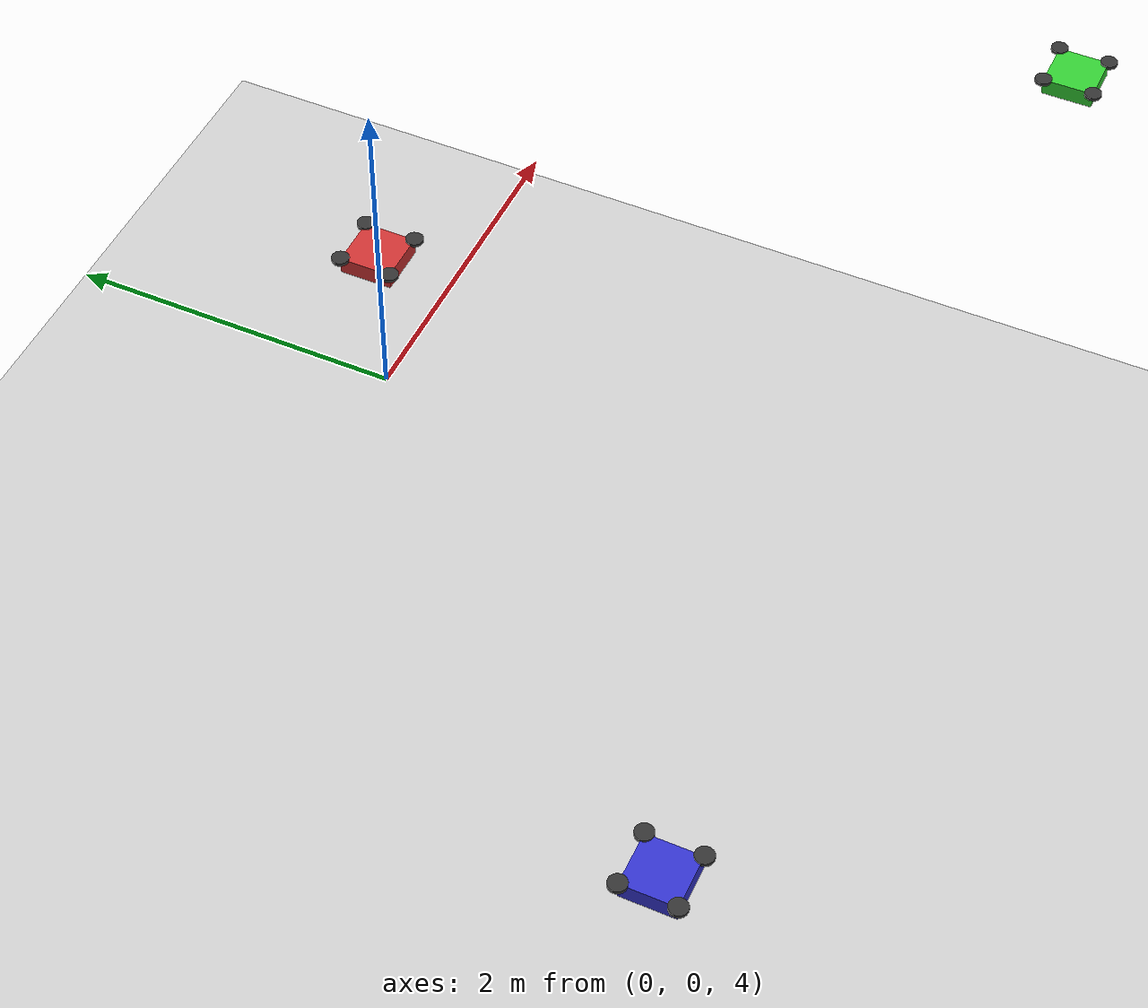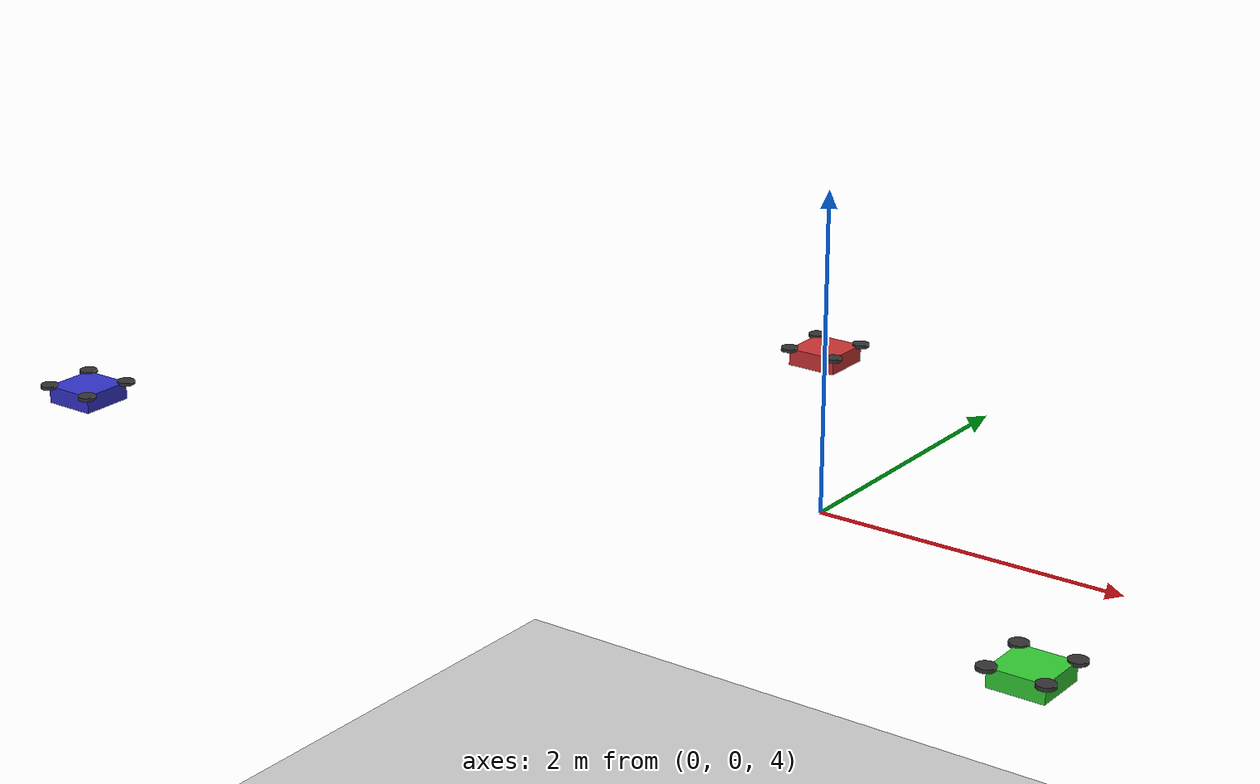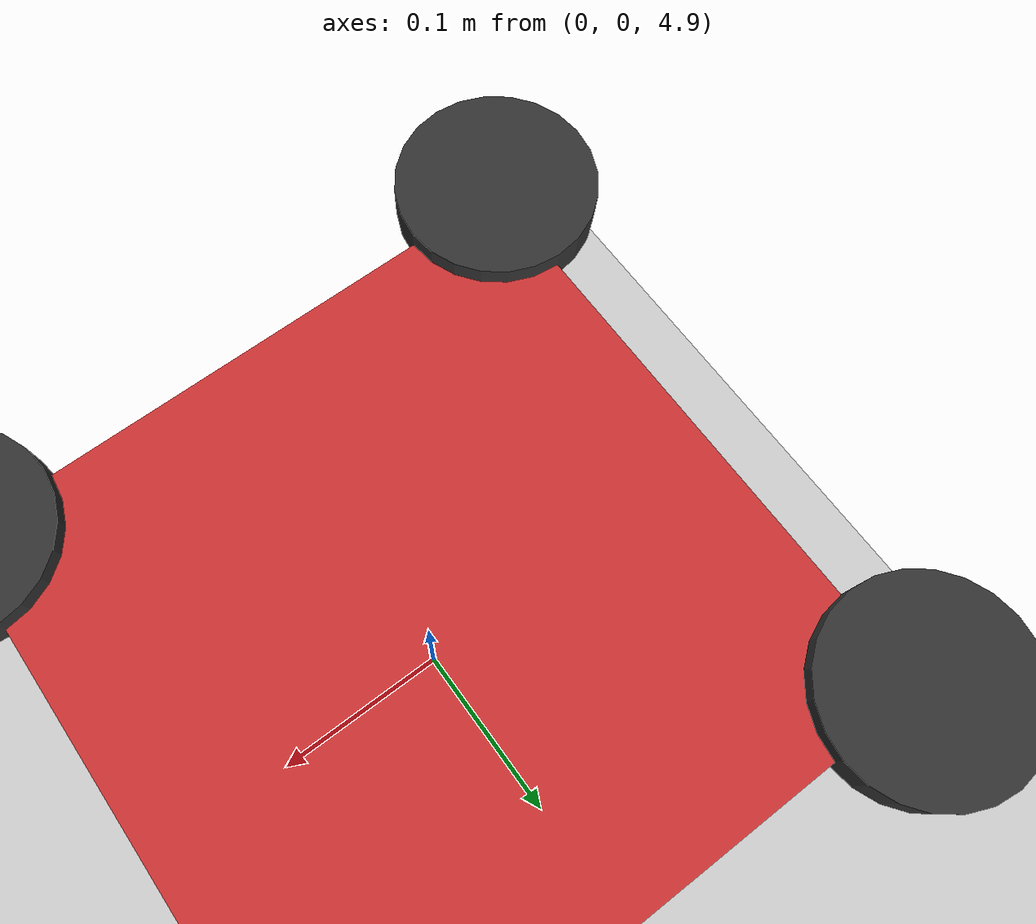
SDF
<?xml version="1.0" ?>
<sdf version="1.6">
  <world name="formation_flying_world">
    <!-- A global light source -->
    <include>
      <uri>model://sun</uri>
    </include>

    <!-- A ground plane -->
    <include>
      <uri>model://ground_plane</uri>
    </include>

    <!-- Drone 1 - Leader -->
    <model name="drone1">
      <static>false</static>
      <link name="base_link">
        <visual name="body_visual">
          <geometry>
            <box>
              <size>0.3 0.3 0.1</size>
            </box>
          </geometry>
          <material>
            <ambient>0.8 0.2 0.2 1</ambient>
            <diffuse>0.8 0.2 0.2 1</diffuse>
            <specular>0.2 0.2 0.2 1</specular>
          </material>
        </visual>

        <collision name="body_collision">
          <geometry>
            <box>
              <size>0.3 0.3 0.1</size>
            </box>
          </geometry>
        </collision>

        <inertial>
          <mass>1.0</mass>
          <inertia>
            <ixx>0.01</ixx>
            <ixy>0</ixy>
            <ixz>0</ixz>
            <iyy>0.01</iyy>
            <iyz>0</iyz>
            <izz>0.02</izz>
          </inertia>
        </inertial>
      </link>

      <!-- Propellers -->
      <link name="propeller_1">
        <visual name="prop_1_visual">
          <geometry>
            <cylinder>
              <radius>0.05</radius>
              <length>0.02</length>
            </cylinder>
          </geometry>
          <material>
            <ambient>0.2 0.2 0.2 1</ambient>
            <diffuse>0.2 0.2 0.2 1</diffuse>
          </material>
        </visual>
        <pose>0.15 0.15 0.05 0 0 0</pose>
      </link>

      <link name="propeller_2">
        <visual name="prop_2_visual">
          <geometry>
            <cylinder>
              <radius>0.05</radius>
              <length>0.02</length>
            </cylinder>
          </geometry>
          <material>
            <ambient>0.2 0.2 0.2 1</ambient>
            <diffuse>0.2 0.2 0.2 1</diffuse>
          </material>
        </visual>
        <pose>-0.15 0.15 0.05 0 0 0</pose>
      </link>

      <link name="propeller_3">
        <visual name="prop_3_visual">
          <geometry>
            <cylinder>
              <radius>0.05</radius>
              <length>0.02</length>
            </cylinder>
          </geometry>
          <material>
            <ambient>0.2 0.2 0.2 1</ambient>
            <diffuse>0.2 0.2 0.2 1</diffuse>
          </material>
        </visual>
        <pose>0.15 -0.15 0.05 0 0 0</pose>
      </link>

      <link name="propeller_4">
        <visual name="prop_4_visual">
          <geometry>
            <cylinder>
              <radius>0.05</radius>
              <length>0.02</length>
            </cylinder>
          </geometry>
          <material>
            <ambient>0.2 0.2 0.2 1</ambient>
            <diffuse>0.2 0.2 0.2 1</diffuse>
          </material>
        </visual>
        <pose>-0.15 -0.15 0.05 0 0 0</pose>
      </link>

      <!-- Joints -->
      <joint name="prop_1_joint" type="fixed">
        <parent>base_link</parent>
        <child>propeller_1</child>
      </joint>

      <joint name="prop_2_joint" type="fixed">
        <parent>base_link</parent>
        <child>propeller_2</child>
      </joint>

      <joint name="prop_3_joint" type="fixed">
        <parent>base_link</parent>
        <child>propeller_3</child>
      </joint>

      <joint name="prop_4_joint" type="fixed">
        <parent>base_link</parent>
        <child>propeller_4</child>
      </joint>

      <!-- Plugin for drone control -->
      <plugin name="drone_controller" filename="libgazebo_ros_planar_move.so">
        <commandTopic>/drone1/cmd_vel</commandTopic>
        <odometryTopic>/drone1/odom</odometryTopic>
        <odometryFrame>odom</odometryFrame>
        <odometryRate>20.0</odometryRate>
        <robotBaseFrame>base_link</robotBaseFrame>
      </plugin>

      <!-- Initial position -->
      <pose>0 0 5 0 0 0</pose>
    </model>

    <!-- Drone 2 - Left Wing -->
    <model name="drone2">
      <static>false</static>
      <link name="base_link">
        <visual name="body_visual">
          <geometry>
            <box>
              <size>0.3 0.3 0.1</size>
            </box>
          </geometry>
          <material>
            <ambient>0.2 0.2 0.8 1</ambient>
            <diffuse>0.2 0.2 0.8 1</diffuse>
            <specular>0.2 0.2 0.2 1</specular>
          </material>
        </visual>

        <collision name="body_collision">
          <geometry>
            <box>
              <size>0.3 0.3 0.1</size>
            </box>
          </geometry>
        </collision>

        <inertial>
          <mass>1.0</mass>
          <inertia>
            <ixx>0.01</ixx>
            <ixy>0</ixy>
            <ixz>0</ixz>
            <iyy>0.01</iyy>
            <iyz>0</iyz>
            <izz>0.02</izz>
          </inertia>
        </inertial>
      </link>

      <!-- Propellers -->
      <link name="propeller_1">
        <visual name="prop_1_visual">
          <geometry>
            <cylinder>
              <radius>0.05</radius>
              <length>0.02</length>
            </cylinder>
          </geometry>
          <material>
            <ambient>0.2 0.2 0.2 1</ambient>
            <diffuse>0.2 0.2 0.2 1</diffuse>
          </material>
        </visual>
        <pose>0.15 0.15 0.05 0 0 0</pose>
      </link>

      <link name="propeller_2">
        <visual name="prop_2_visual">
          <geometry>
            <cylinder>
              <radius>0.05</radius>
              <length>0.02</length>
            </cylinder>
          </geometry>
          <material>
            <ambient>0.2 0.2 0.2 1</ambient>
            <diffuse>0.2 0.2 0.2 1</diffuse>
          </material>
        </visual>
        <pose>-0.15 0.15 0.05 0 0 0</pose>
      </link>

      <link name="propeller_3">
        <visual name="prop_3_visual">
          <geometry>
            <cylinder>
              <radius>0.05</radius>
              <length>0.02</length>
            </cylinder>
          </geometry>
          <material>
            <ambient>0.2 0.2 0.2 1</ambient>
            <diffuse>0.2 0.2 0.2 1</diffuse>
          </material>
        </visual>
        <pose>0.15 -0.15 0.05 0 0 0</pose>
      </link>

      <link name="propeller_4">
        <visual name="prop_4_visual">
          <geometry>
            <cylinder>
              <radius>0.05</radius>
              <length>0.02</length>
            </cylinder>
          </geometry>
          <material>
            <ambient>0.2 0.2 0.2 1</ambient>
            <diffuse>0.2 0.2 0.2 1</diffuse>
          </material>
        </visual>
        <pose>-0.15 -0.15 0.05 0 0 0</pose>
      </link>

      <!-- Joints -->
      <joint name="prop_1_joint" type="fixed">
        <parent>base_link</parent>
        <child>propeller_1</child>
      </joint>

      <joint name="prop_2_joint" type="fixed">
        <parent>base_link</parent>
        <child>propeller_2</child>
      </joint>

      <joint name="prop_3_joint" type="fixed">
        <parent>base_link</parent>
        <child>propeller_3</child>
      </joint>

      <joint name="prop_4_joint" type="fixed">
        <parent>base_link</parent>
        <child>propeller_4</child>
      </joint>

      <!-- Plugin for drone control -->
      <plugin name="drone_controller" filename="libgazebo_ros_planar_move.so">
        <commandTopic>/drone2/cmd_vel</commandTopic>
        <odometryTopic>/drone2/odom</odometryTopic>
        <odometryFrame>odom</odometryFrame>
        <odometryRate>20.0</odometryRate>
        <robotBaseFrame>base_link</robotBaseFrame>
      </plugin>

      <!-- Initial position -->
      <pose>-3 -3 5 0 0 0</pose>
    </model>

    <!-- Drone 3 - Right Wing -->
    <model name="drone3">
      <static>false</static>
      <link name="base_link">
        <visual name="body_visual">
          <geometry>
            <box>
              <size>0.3 0.3 0.1</size>
            </box>
          </geometry>
          <material>
            <ambient>0.2 0.8 0.2 1</ambient>
            <diffuse>0.2 0.8 0.2 1</diffuse>
            <specular>0.2 0.2 0.2 1</specular>
          </material>
        </visual>

        <collision name="body_collision">
          <geometry>
            <box>
              <size>0.3 0.3 0.1</size>
            </box>
          </geometry>
        </collision>

        <inertial>
          <mass>1.0</mass>
          <inertia>
            <ixx>0.01</ixx>
            <ixy>0</ixy>
            <ixz>0</ixz>
            <iyy>0.01</iyy>
            <iyz>0</iyz>
            <izz>0.02</izz>
          </inertia>
        </inertial>
      </link>

      <!-- Propellers -->
      <link name="propeller_1">
        <visual name="prop_1_visual">
          <geometry>
            <cylinder>
              <radius>0.05</radius>
              <length>0.02</length>
            </cylinder>
          </geometry>
          <material>
            <ambient>0.2 0.2 0.2 1</ambient>
            <diffuse>0.2 0.2 0.2 1</diffuse>
          </material>
        </visual>
        <pose>0.15 0.15 0.05 0 0 0</pose>
      </link>

      <link name="propeller_2">
        <visual name="prop_2_visual">
          <geometry>
            <cylinder>
              <radius>0.05</radius>
              <length>0.02</length>
            </cylinder>
          </geometry>
          <material>
            <ambient>0.2 0.2 0.2 1</ambient>
            <diffuse>0.2 0.2 0.2 1</diffuse>
          </material>
        </visual>
        <pose>-0.15 0.15 0.05 0 0 0</pose>
      </link>

      <link name="propeller_3">
        <visual name="prop_3_visual">
          <geometry>
            <cylinder>
              <radius>0.05</radius>
              <length>0.02</length>
            </cylinder>
          </geometry>
          <material>
            <ambient>0.2 0.2 0.2 1</ambient>
            <diffuse>0.2 0.2 0.2 1</diffuse>
          </material>
        </visual>
        <pose>0.15 -0.15 0.05 0 0 0</pose>
      </link>

      <link name="propeller_4">
        <visual name="prop_4_visual">
          <geometry>
            <cylinder>
              <radius>0.05</radius>
              <length>0.02</length>
            </cylinder>
          </geometry>
          <material>
            <ambient>0.2 0.2 0.2 1</ambient>
            <diffuse>0.2 0.2 0.2 1</diffuse>
          </material>
        </visual>
        <pose>-0.15 -0.15 0.05 0 0 0</pose>
      </link>

      <!-- Joints -->
      <joint name="prop_1_joint" type="fixed">
        <parent>base_link</parent>
        <child>propeller_1</child>
      </joint>

      <joint name="prop_2_joint" type="fixed">
        <parent>base_link</parent>
        <child>propeller_2</child>
      </joint>

      <joint name="prop_3_joint" type="fixed">
        <parent>base_link</parent>
        <child>propeller_3</child>
      </joint>

      <joint name="prop_4_joint" type="fixed">
        <parent>base_link</parent>
        <child>propeller_4</child>
      </joint>

      <!-- Plugin for drone control -->
      <plugin name="drone_controller" filename="libgazebo_ros_planar_move.so">
        <commandTopic>/drone3/cmd_vel</commandTopic>
        <odometryTopic>/drone3/odom</odometryTopic>
        <odometryFrame>odom</odometryFrame>
        <odometryRate>20.0</odometryRate>
        <robotBaseFrame>base_link</robotBaseFrame>
      </plugin>

      <!-- Initial position -->
      <pose>3 -3 5 0 0 0</pose>
    </model>

    <!-- Physics settings -->
    <physics type="ode">
      <max_step_size>0.001</max_step_size>
      <real_time_factor>1</real_time_factor>
      <real_time_update_rate>1000</real_time_update_rate>
      <gravity>0 0 -9.81</gravity>
    </physics>

    <!-- GUI settings -->
    <gui fullscreen='0'>
      <camera name='user_camera'>
        <pose>5 -5 5 0 0.785 0.785</pose>
        <view_controller>orbit</view_controller>
      </camera>
    </gui>
  </world>
</sdf>
